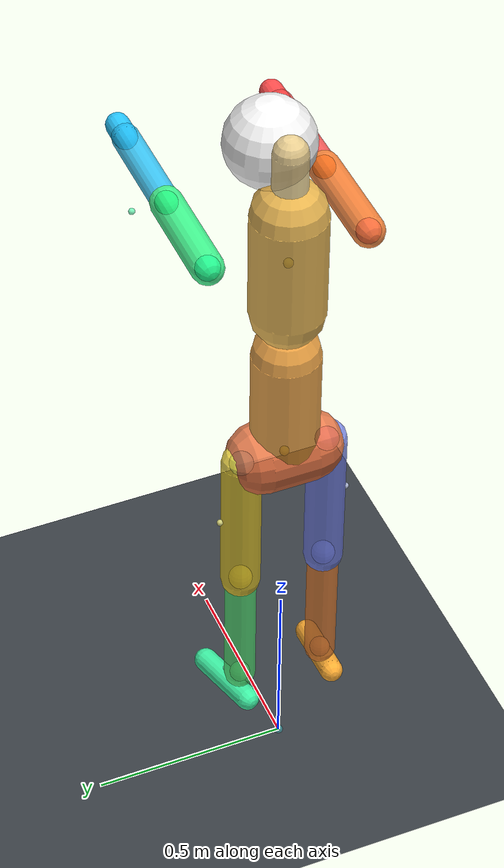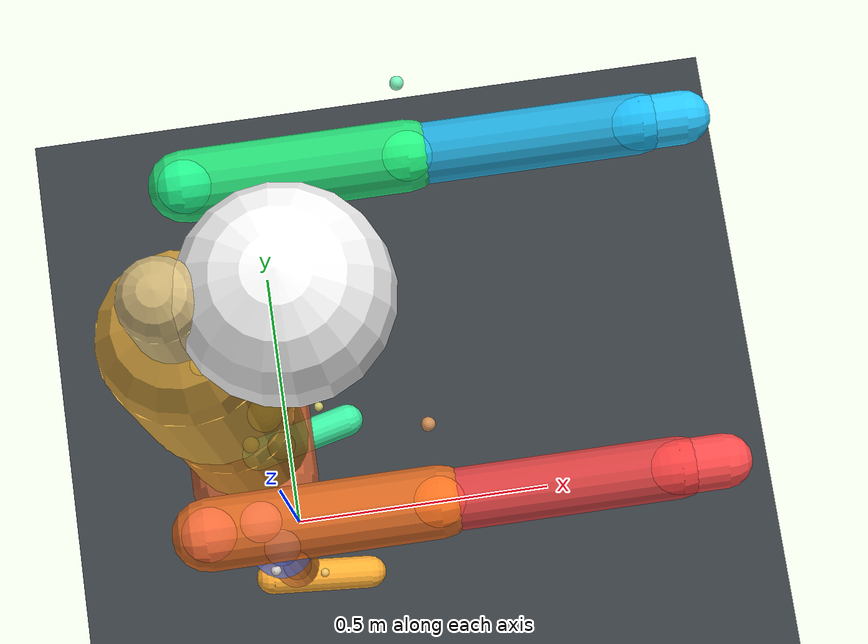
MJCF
<mujoco model="custom_articulated_human">
  <compiler angle="degree" />
  <option timestep="0.005" gravity="0 0 -9.81" integrator="implicitfast" />
  <default>
    <joint limited="true" damping="2" stiffness="0.5" armature="0.01" />
    <geom conaffinity="1" contype="1" friction="0.8 0.1 0.05" density="0" />
    <motor ctrllimited="true" />
    <default class="trunk_joint">
      <joint damping="8" stiffness="2" />
    </default>
    <default class="shoulder_joint">
      <joint damping="3" stiffness="1" />
    </default>
    <default class="hip_joint">
      <joint damping="4" stiffness="1" />
    </default>
    <default class="elbow_joint">
      <joint damping="2" stiffness="0.5" />
    </default>
    <default class="knee_joint">
      <joint damping="3" stiffness="0.5" />
    </default>
    <default class="ankle_joint">
      <joint damping="2.5" stiffness="0.5" />
    </default>
  </default>
  <asset>
    <texture name="grid" type="2d" builtin="checker" width="512" height="512" rgb1="0.15 0.17 0.19" rgb2="0.09 0.10 0.11" />
    <material name="grid" texture="grid" texrepeat="8 8" reflectance="0.05" />
  </asset>
  <worldbody>
    <light pos="0 0 5" dir="0 0 -1" directional="true" />
    <geom name="floor" type="plane" size="5 5 0.1" material="grid" rgba="0.22 0.24 0.26 1" />
    <camera name="overview" pos="3.0 -3.3 2.2" xyaxes="0.73 0.68 0 -0.24 0.25 0.94" />
    <body name="pelvis" pos="0 0 1.03">
      <freejoint name="root" />
      <inertial pos="0.000000 0.000000 0.000000" mass="6.400000" diaginertia="0.034448 0.018133 0.037221" />
      <geom name="pelvis_geom" type="capsule" fromto="0 -0.06 0 0 0.06 0" size="0.09" rgba="0.95 0.48 0.28 0.88" />
      <site name="pelvis_site" pos="0 0 0" size="0.012" rgba="1 0.95 0.30 0.9" />
      <body name="torso_base" pos="0.000000 0.000000 0.034915">
        <joint name="abdomen_z" class="trunk_joint" type="hinge" axis="0 0 1" range="-50 50" />
        <joint name="abdomen_y" class="trunk_joint" type="hinge" axis="0 1 0" range="-80 50" />
        <joint name="abdomen_x" class="trunk_joint" type="hinge" axis="1 0 0" range="-45 45" />
        <inertial pos="0.000000 0.000000 0.122202" mass="10.200000" diaginertia="0.149749 0.125072 0.106958" />
        <geom name="lower_torso_geom" type="capsule" fromto="0.000000 0.000000 -0.034915 0.000000 0.000000 0.279319" size="0.085026" rgba="0.96 0.62 0.20 0.86" />
        <body name="thorax" pos="0.000000 0.000000 0.558637">
          <inertial pos="0.000000 0.000000 0.029678" mass="17.768000" diaginertia="0.289111 0.185379 0.303918" />
          <geom name="thorax_geom" type="capsule" fromto="0.000000 0.000000 -0.139659 0.000000 0.000000 0.139659" size="0.092756" rgba="0.95 0.72 0.28 0.88" />
          <geom name="neck_geom" type="capsule" fromto="0.000000 0.000000 0.139659 0.000000 0.000000 0.314233" size="0.042513" rgba="0.97 0.84 0.54 0.80" />
          <site name="thorax_site" pos="0 0 0" size="0.012" rgba="1 0.95 0.30 0.9" />
          <joint name="neck_z" class="trunk_joint" type="hinge" axis="0 0 1" range="-50 50" />
          <joint name="neck_y" class="trunk_joint" type="hinge" axis="0 1 0" range="-45 45" />
          <joint name="neck_x" class="trunk_joint" type="hinge" axis="1 0 0" range="-45 45" />
          <body name="head" pos="0.114491 0.000000 0.263888">
            <inertial pos="0.000000 0.000000 0.000000" mass="5.552000" diaginertia="0.037013 0.037013 0.037013" />
            <geom name="head_geom" type="sphere" size="0.11" rgba="0.98 0.98 0.98 0.92" />
            <site name="head_site" pos="0 0 0" size="0.012" rgba="1 0.95 0.30 0.9" />
          </body>
          <body name="left_shoulder_mount" pos="0.010639 0.193241 0.040000">
            <joint name="shoulder_shrug_left" class="shoulder_joint" type="slide" axis="0 0 1" range="0 0.10" />
            <joint name="shoulder1_left" class="shoulder_joint" type="hinge" axis="-2 1 -1" range="-120 120" />
            <joint name="shoulder2_left" class="shoulder_joint" type="hinge" axis="0 -1 -1" range="-120 120" />
            <joint name="shoulder3_left" class="shoulder_joint" type="hinge" axis="1 1 -1" range="-150 150" />
            <inertial pos="0.000000 0.000000 0.030000" mass="0.100000" diaginertia="0.000083 0.000083 0.000060" />
            <geom name="left_shoulder_marker" type="sphere" size="0.03" rgba="0.14 0.92 0.88 0.9" />
            <site name="left_shoulder_site" pos="0 0 0" size="0.010" rgba="0.14 0.92 0.88 0.9" />
            <body name="left_upper_arm" pos="0 0 0">
              <inertial pos="0.124454 0.000000 0.000000" mass="2.168000" diaginertia="0.002313 0.012350 0.012350" />
              <geom name="left_upper_arm_geom" type="capsule" fromto="0.000000 0.000000 0.000000 0.248908 0.000000 0.000000" size="0.04" rgba="0.18 1 0.54 0.85" />
              <body name="left_elbow" pos="0.248908 0.000000 0.000000">
                <joint name="elbow_left" class="elbow_joint" type="hinge" axis="0 -1 -1" range="-175 10" />
                <inertial pos="0.129896 0.000000 0.000000" mass="1.296000" diaginertia="0.000999 0.007789 0.007789" />
                <geom name="left_elbow_marker" type="sphere" size="0.028" rgba="0.18 1 0.54 0.9" />
                <site name="left_elbow_site" pos="0 0 0" size="0.010" rgba="0.18 1 0.54 0.9" />
                <site name="left_elbow_pole_site" pos="0.000000 0.085000 0.000000" size="0.008" rgba="0.40 1 0.72 0.8" />
                <geom name="left_forearm_geom" type="capsule" fromto="0.000000 0.000000 0.000000 0.259793 0.000000 0.000000" size="0.034" rgba="0.16 0.78 1 0.85" />
                <body name="left_hand" pos="0.259793 0.000000 0.000000">
                  <inertial pos="0.025000 0.000000 0.000000" mass="0.488000" diaginertia="0.000293 0.000248 0.000248" />
                  <geom name="left_hand_geom" type="capsule" fromto="0.000000 0.000000 0.000000 0.050000 0.000000 0.000000" size="0.03" rgba="0.16 0.78 1 0.92" />
                  <site name="left_hand_site" pos="0.050000 0.000000 0.000000" size="0.010" rgba="0.16 0.78 1 0.92" />
                </body>
              </body>
            </body>
          </body>
          <body name="right_shoulder_mount" pos="-0.009388 -0.193241 0.040000">
            <joint name="shoulder_shrug_right" class="shoulder_joint" type="slide" axis="0 0 1" range="0 0.10" />
            <joint name="shoulder1_right" class="shoulder_joint" type="hinge" axis="2 1 1" range="-120 120" />
            <joint name="shoulder2_right" class="shoulder_joint" type="hinge" axis="0 -1 1" range="-120 120" />
            <joint name="shoulder3_right" class="shoulder_joint" type="hinge" axis="1 -1 -1" range="-150 150" />
            <inertial pos="0.000000 0.000000 0.030000" mass="0.100000" diaginertia="0.000083 0.000083 0.000060" />
            <geom name="right_shoulder_marker" type="sphere" size="0.03" rgba="0.92 0.36 0.88 0.9" />
            <site name="right_shoulder_site" pos="0 0 0" size="0.010" rgba="0.92 0.36 0.88 0.9" />
            <body name="right_upper_arm" pos="0 0 0">
              <inertial pos="0.124454 0.000000 0.000000" mass="2.168000" diaginertia="0.002313 0.012350 0.012350" />
              <geom name="right_upper_arm_geom" type="capsule" fromto="0.000000 0.000000 0.000000 0.248908 0.000000 0.000000" size="0.04" rgba="1 0.48 0.16 0.85" />
              <body name="right_elbow" pos="0.248908 0.000000 0.000000">
                <joint name="elbow_right" class="elbow_joint" type="hinge" axis="0 -1 1" range="-175 10" />
                <inertial pos="0.129896 0.000000 0.000000" mass="1.296000" diaginertia="0.000999 0.007789 0.007789" />
                <geom name="right_elbow_marker" type="sphere" size="0.028" rgba="1 0.48 0.16 0.9" />
                <site name="right_elbow_site" pos="0 0 0" size="0.010" rgba="1 0.48 0.16 0.9" />
                <site name="right_elbow_pole_site" pos="0.000000 0.085000 0.000000" size="0.008" rgba="1 0.68 0.40 0.8" />
                <geom name="right_forearm_geom" type="capsule" fromto="0.000000 0.000000 0.000000 0.259793 0.000000 0.000000" size="0.034" rgba="1 0.30 0.30 0.85" />
                <body name="right_hand" pos="0.259793 0.000000 0.000000">
                  <inertial pos="0.025000 0.000000 0.000000" mass="0.488000" diaginertia="0.000293 0.000248 0.000248" />
                  <geom name="right_hand_geom" type="capsule" fromto="0.000000 0.000000 0.000000 0.050000 0.000000 0.000000" size="0.03" rgba="1 0.30 0.30 0.92" />
                  <site name="right_hand_site" pos="0.050000 0.000000 0.000000" size="0.010" rgba="1 0.30 0.30 0.92" />
                </body>
              </body>
            </body>
          </body>
        </body>
      </body>
      <body name="left_hip_mount" pos="0.000004 0.112016 0.000001">
        <joint name="hip_x_left" class="hip_joint" type="hinge" axis="1 0 0" range="-55 45" />
        <joint name="hip_z_left" class="hip_joint" type="hinge" axis="0 0 1" range="-45 45" />
        <joint name="hip_y_left" class="hip_joint" type="hinge" axis="0 1 0" range="-170 45" />
        <inertial pos="0.000000 0.000000 0.000000" mass="0.100000" diaginertia="0.000083 0.000083 0.000060" />
        <geom name="left_hip_marker" type="sphere" size="0.03" rgba="0.28 0.82 1 0.9" />
        <site name="left_hip_site" pos="0 0 0" size="0.010" rgba="0.28 0.82 1 0.9" />
        <body name="left_thigh" pos="0 0 0">
          <inertial pos="0.000000 0.000000 -0.198458" mass="11.328000" diaginertia="0.158160 0.158160 0.018880" />
          <geom name="left_thigh_geom" type="capsule" fromto="0.000000 0.000000 0.000000 0.000000 0.000000 -0.396916" size="0.05" rgba="1 0.88 0.22 0.85" />
          <site name="left_thigh_lateral_site" pos="0.000000 0.055000 -0.182581" size="0.008" rgba="1 0.98 0.56 0.80" />
          <body name="left_knee" pos="0.000000 0.000000 -0.396916">
            <joint name="knee_left" class="knee_joint" type="hinge" axis="0 1 0" range="-170 0" />
            <inertial pos="0.000000 0.000000 -0.176422" mass="3.464000" diaginertia="0.037786 0.037786 0.003695" />
            <geom name="left_knee_marker" type="sphere" size="0.03" rgba="1 0.88 0.22 0.9" />
            <site name="left_knee_site" pos="0 0 0" size="0.010" rgba="1 0.88 0.22 0.9" />
            <site name="left_knee_pole_site" pos="0.090000 0.000000 0.000000" size="0.008" rgba="1 0.96 0.48 0.8" />
            <site name="left_knee_forward_site" pos="0.040 0 0" size="0.007" rgba="1 0.98 0.62 0.72" />
            <geom name="left_shin_geom" type="capsule" fromto="0.000000 0.000000 0.000000 0.000000 0.000000 -0.352844" size="0.04" rgba="0.40 1 0.54 0.85" />
            <body name="left_ankle" pos="0.000000 0.000000 -0.352844">
              <joint name="ankle_y_left" class="ankle_joint" type="hinge" axis="0 1 0" range="-90 120" />
              <joint name="ankle_x_left" class="ankle_joint" type="hinge" axis="-1 0 -0.5" range="-35 35" />
              <inertial pos="0.000000 0.000000 0.000000" mass="0.000001" diaginertia="0.000001 0.000001 0.000001" />
              <geom name="left_ankle_marker" type="sphere" size="0.026" rgba="0.40 1 0.54 0.9" />
              <site name="left_ankle_site" pos="0 0 0" size="0.010" rgba="0.40 1 0.54 0.9" />
              <body name="left_foot" pos="-0.004261 0.006788 -0.042380">
                <inertial pos="0.042676 0.013584 -0.019096" mass="1.096000" diaginertia="0.001187 0.003716 0.003423" />
                <geom name="left_foot_geom" type="capsule" fromto="-0.044632 -0.008264 -0.012346 0.129984 0.035433 -0.025845" size="0.03" rgba="0.24 0.94 0.64 0.92" />
                <site name="left_heel_site" pos="-0.044632 -0.008264 -0.012346" size="0.008" rgba="0.48 1 0.74 0.82" />
                <site name="left_foot_site" pos="0.129984 0.035433 -0.025845" size="0.010" rgba="0.24 0.94 0.64 0.92" />
                <site name="left_foot_dorsal_site" pos="0.045578 0.014311 0.020792" size="0.008" rgba="0.54 1 0.82 0.80" />
              </body>
            </body>
          </body>
        </body>
      </body>
      <body name="right_hip_mount" pos="0.000004 -0.112016 0.000001">
        <joint name="hip_x_right" class="hip_joint" type="hinge" axis="1 0 0" range="-55 45" />
        <joint name="hip_z_right" class="hip_joint" type="hinge" axis="0 0 1" range="-45 45" />
        <joint name="hip_y_right" class="hip_joint" type="hinge" axis="0 1 0" range="-170 45" />
        <inertial pos="0.000000 0.000000 0.000000" mass="0.100000" diaginertia="0.000083 0.000083 0.000060" />
        <geom name="right_hip_marker" type="sphere" size="0.03" rgba="0.82 0.46 1 0.9" />
        <site name="right_hip_site" pos="0 0 0" size="0.010" rgba="0.82 0.46 1 0.9" />
        <body name="right_thigh" pos="0 0 0">
          <inertial pos="0.000000 0.000000 -0.198458" mass="11.328000" diaginertia="0.158160 0.158160 0.018880" />
          <geom name="right_thigh_geom" type="capsule" fromto="0.000000 0.000000 0.000000 0.000000 0.000000 -0.396916" size="0.05" rgba="0.52 0.58 1 0.85" />
          <site name="right_thigh_lateral_site" pos="0.000000 -0.055000 -0.182581" size="0.008" rgba="0.82 0.86 1 0.80" />
          <body name="right_knee" pos="0.000000 0.000000 -0.396916">
            <joint name="knee_right" class="knee_joint" type="hinge" axis="0 1 0" range="-170 0" />
            <inertial pos="0.000000 0.000000 -0.176422" mass="3.464000" diaginertia="0.037786 0.037786 0.003695" />
            <geom name="right_knee_marker" type="sphere" size="0.03" rgba="0.52 0.58 1 0.9" />
            <site name="right_knee_site" pos="0 0 0" size="0.010" rgba="0.52 0.58 1 0.9" />
            <site name="right_knee_pole_site" pos="0.090000 0.000000 0.000000" size="0.008" rgba="0.72 0.78 1 0.8" />
            <site name="right_knee_forward_site" pos="0.040 0 0" size="0.007" rgba="0.82 0.88 1 0.72" />
            <geom name="right_shin_geom" type="capsule" fromto="0.000000 0.000000 0.000000 0.000000 0.000000 -0.352844" size="0.04" rgba="1 0.58 0.26 0.85" />
            <body name="right_ankle" pos="0.000000 0.000000 -0.352844">
              <joint name="ankle_y_right" class="ankle_joint" type="hinge" axis="0 1 0" range="-90 120" />
              <joint name="ankle_x_right" class="ankle_joint" type="hinge" axis="1 0 0.5" range="-35 35" />
              <inertial pos="0.000000 0.000000 0.000000" mass="0.000001" diaginertia="0.000001 0.000001 0.000001" />
              <geom name="right_ankle_marker" type="sphere" size="0.026" rgba="1 0.58 0.26 0.9" />
              <site name="right_ankle_site" pos="0 0 0" size="0.010" rgba="1 0.58 0.26 0.9" />
              <body name="right_foot" pos="-0.004384 -0.010702 -0.039784">
                <inertial pos="0.043908 -0.006777 -0.024153" mass="1.096000" diaginertia="0.001187 0.003826 0.003533" />
                <geom name="right_foot_geom" type="capsule" fromto="-0.045920 -0.001216 -0.005532 0.133736 -0.012339 -0.042773" size="0.03" rgba="1 0.68 0.20 0.92" />
                <site name="right_heel_site" pos="-0.045920 -0.001216 -0.005532" size="0.008" rgba="1 0.80 0.40 0.82" />
                <site name="right_foot_site" pos="0.133736 -0.012339 -0.042773" size="0.010" rgba="1 0.68 0.20 0.92" />
                <site name="right_foot_dorsal_site" pos="0.051997 -0.007278 0.015018" size="0.008" rgba="1 0.82 0.46 0.80" />
              </body>
            </body>
          </body>
        </body>
      </body>
    </body>
    <body name="left_grip_anchor" mocap="true" pos="0 0 0" quat="1 0 0 0">
      <site name="left_grip_anchor_site" pos="0 0 0" size="0.012" rgba="0.20 0.96 1 0.35" />
    </body>
    <body name="right_grip_anchor" mocap="true" pos="0 0 0" quat="1 0 0 0">
      <site name="right_grip_anchor_site" pos="0 0 0" size="0.012" rgba="1 0.58 0.58 0.35" />
    </body>
  </worldbody>
  <actuator>
    <motor name="abdomen_z_motor" joint="abdomen_z" ctrlrange="-1 1" gear="220" />
    <motor name="abdomen_y_motor" joint="abdomen_y" ctrlrange="-1 1" gear="220" />
    <motor name="abdomen_x_motor" joint="abdomen_x" ctrlrange="-1 1" gear="220" />
    <motor name="neck_z_motor" joint="neck_z" ctrlrange="-1 1" gear="60" />
    <motor name="neck_y_motor" joint="neck_y" ctrlrange="-1 1" gear="60" />
    <motor name="neck_x_motor" joint="neck_x" ctrlrange="-1 1" gear="60" />
    <motor name="shoulder_shrug_left_motor" joint="shoulder_shrug_left" ctrlrange="0 0.10" gear="400" />
    <motor name="shoulder1_left_motor" joint="shoulder1_left" ctrlrange="-2.094 2.094" gear="140" />
    <motor name="shoulder2_left_motor" joint="shoulder2_left" ctrlrange="-2.094 2.094" gear="140" />
    <motor name="shoulder3_left_motor" joint="shoulder3_left" ctrlrange="-2.618 2.618" gear="120" />
    <motor name="elbow_left_motor" joint="elbow_left" ctrlrange="-3.054 0.175" gear="120" />
    <motor name="shoulder_shrug_right_motor" joint="shoulder_shrug_right" ctrlrange="0 0.10" gear="400" />
    <motor name="shoulder1_right_motor" joint="shoulder1_right" ctrlrange="-2.094 2.094" gear="140" />
    <motor name="shoulder2_right_motor" joint="shoulder2_right" ctrlrange="-2.094 2.094" gear="140" />
    <motor name="shoulder3_right_motor" joint="shoulder3_right" ctrlrange="-2.618 2.618" gear="120" />
    <motor name="elbow_right_motor" joint="elbow_right" ctrlrange="-3.054 0.175" gear="120" />
    <motor name="hip_x_left_motor" joint="hip_x_left" ctrlrange="-0.960 0.785" gear="320" />
    <motor name="hip_z_left_motor" joint="hip_z_left" ctrlrange="-1.920 1.396" gear="320" />
    <motor name="hip_y_left_motor" joint="hip_y_left" ctrlrange="-2.967 0.785" gear="420" />
    <motor name="knee_left_motor" joint="knee_left" ctrlrange="-2.967 0.087" gear="360" />
    <motor name="ankle_y_left_motor" joint="ankle_y_left" ctrlrange="-1.571 2.094" gear="180" />
    <motor name="ankle_x_left_motor" joint="ankle_x_left" ctrlrange="-1.047 1.047" gear="160" />
    <motor name="hip_x_right_motor" joint="hip_x_right" ctrlrange="-0.960 0.785" gear="320" />
    <motor name="hip_z_right_motor" joint="hip_z_right" ctrlrange="-1.920 1.396" gear="320" />
    <motor name="hip_y_right_motor" joint="hip_y_right" ctrlrange="-2.967 0.785" gear="420" />
    <motor name="knee_right_motor" joint="knee_right" ctrlrange="-2.967 0.087" gear="360" />
    <motor name="ankle_y_right_motor" joint="ankle_y_right" ctrlrange="-1.571 2.094" gear="180" />
    <motor name="ankle_x_right_motor" joint="ankle_x_right" ctrlrange="-1.047 1.047" gear="160" />
  </actuator>
  <equality>
    <weld name="left_hand_grip_weld" body1="left_hand" body2="left_grip_anchor" solref="0.004 1" solimp="0.95 0.99 0.001" />
    <weld name="right_hand_grip_weld" body1="right_hand" body2="right_grip_anchor" solref="0.004 1" solimp="0.95 0.99 0.001" />
  </equality>
</mujoco>
